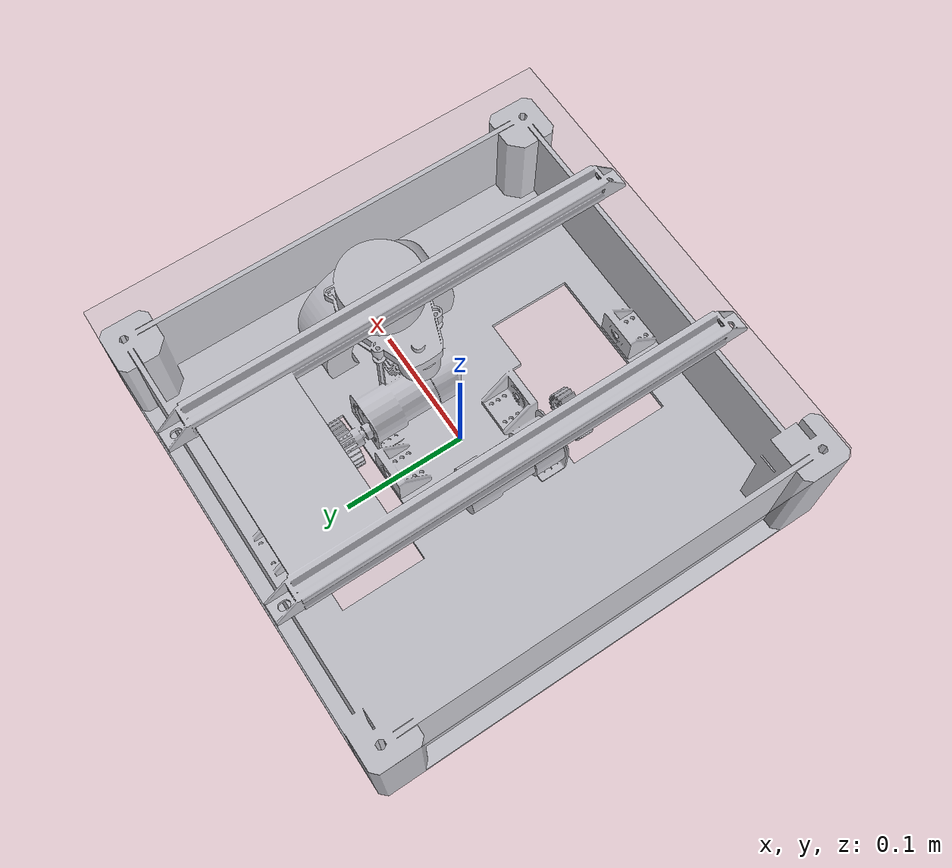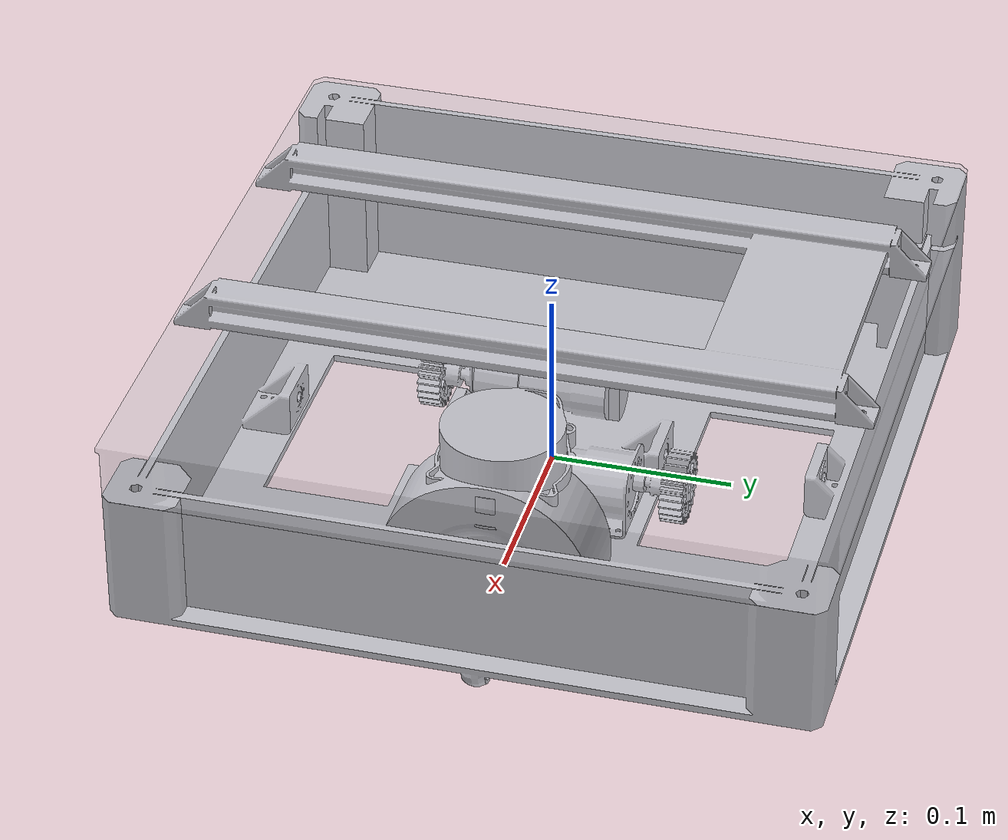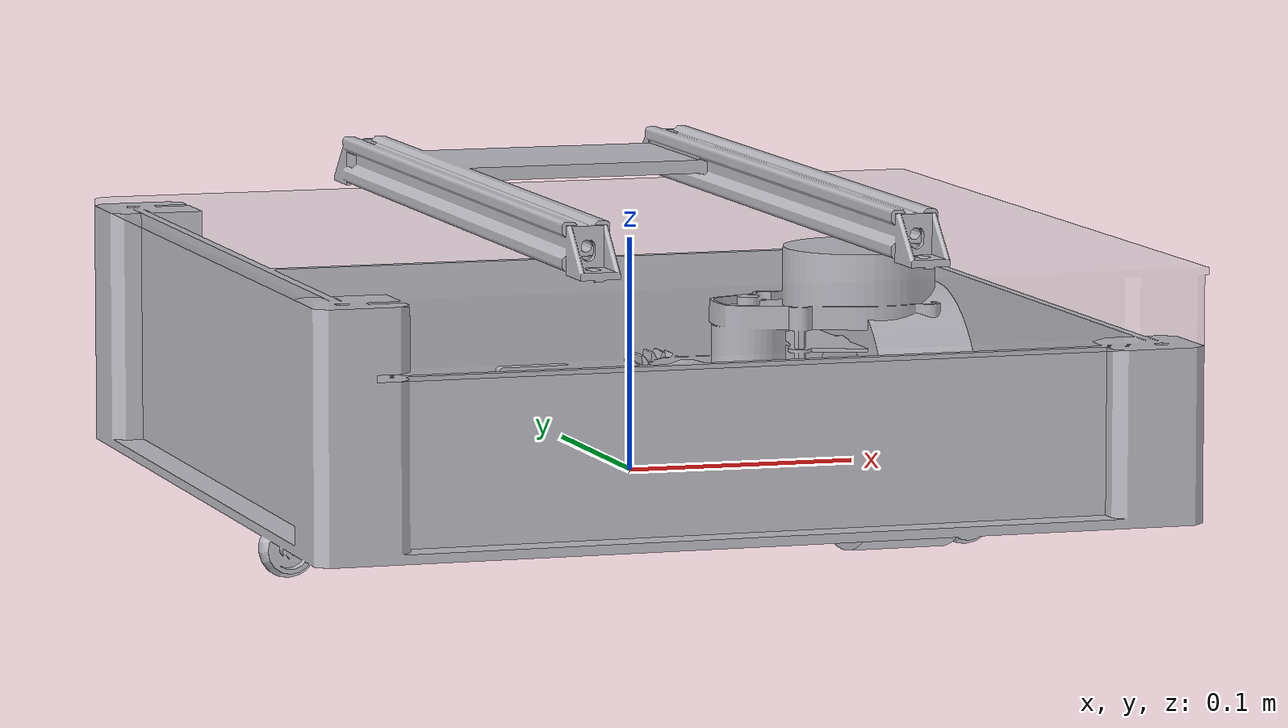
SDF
<?xml version='1.0'?>
<sdf version='1.7'>
  <model name='mr_robot'>
    <link name='base_link'>
      <inertial>
        <pose>-0.000222 0.006034 0.057946 0 -0 0</pose>
        <mass>22.7415</mass>
        <inertia>
          <ixx>0.39518</ixx>
          <ixy>0.00133718</ixy>
          <ixz>0</ixz>
          <iyy>0.371621</iyy>
          <iyz>0</iyz>
          <izz>0.693024</izz>
        </inertia>
      </inertial>
      <gravity>1</gravity>
      <self_collide>1</self_collide>
      <enable_wind>0</enable_wind>
      <kinematic>0</kinematic>
      <pose>0 0 0 0 -0 0</pose>
      <visual name='base_link_fixed_joint_lump__upper_panel_1_visual_2'>
        <pose>0 0 0 0 -0 0</pose>
        <geometry>
          <mesh>
            <scale>0.001 0.001 0.001</scale>
            <uri>/home/noemoji041/ros_workspaces/urdf_catkin/src/mr_robot_description/meshes/upper_panel_1.stl</uri>
          </mesh>
        </geometry>
        <material>
          <script>
            <name>Gazebo/Silver</name>
            <uri>file://media/materials/scripts/gazebo.material</uri>
          </script>
          <shader type='pixel'>
            <normal_map>__default__</normal_map>
          </shader>
          <ambient>0.05 0.05 0.05 1</ambient>
          <diffuse>0.6 0.66 0.6 1</diffuse>
          <specular>0.2 0.2 0.2 1</specular>
          <emissive>0 0 0 1</emissive>
        </material>
        <transparency>0.7</transparency>
        <cast_shadows>1</cast_shadows>
      </visual>
      <visual name='base_link_fixed_joint_lump__V_Slot_1_visual_3'>
        <pose>0 0 0 0 -0 0</pose>
        <geometry>
          <mesh>
            <scale>0.001 0.001 0.001</scale>
            <uri>/home/noemoji041/ros_workspaces/urdf_catkin/src/mr_robot_description/meshes/V_Slot_1.stl</uri>
          </mesh>
        </geometry>
        <material>
          <script>
            <name>Gazebo/Silver</name>
            <uri>file://media/materials/scripts/gazebo.material</uri>
          </script>
          <shader type='pixel'>
            <normal_map>__default__</normal_map>
          </shader>
          <ambient>0.04 0.04 0.04 1</ambient>
          <diffuse>0.8 0.8 0.8 1</diffuse>
          <specular>0.4 0.4 0.4 1</specular>
          <emissive>0 0 0 1</emissive>
        </material>
        <transparency>0</transparency>
        <cast_shadows>1</cast_shadows>
      </visual>
      <visual name='base_link_visual'>
        <pose>0 0 0 0 -0 0</pose>
        <geometry>
          <mesh>
            <scale>0.001 0.001 0.001</scale>
            <uri>/home/noemoji041/ros_workspaces/urdf_catkin/src/mr_robot_description/meshes/base_link.stl</uri>
          </mesh>
        </geometry>
        <material>
          <script>
            <name>Gazebo/Silver</name>
            <uri>file://media/materials/scripts/gazebo.material</uri>
          </script>
          <shader type='pixel'>
            <normal_map>__default__</normal_map>
          </shader>
          <ambient>0.05 0.05 0.05 1</ambient>
          <diffuse>0.9 0.9 0.9 1</diffuse>
          <specular>0.3 0.3 0.3 1</specular>
          <emissive>0 0 0 1</emissive>
        </material>
        <transparency>0</transparency>
        <cast_shadows>1</cast_shadows>
      </visual>
      <visual name='base_link_fixed_joint_lump__lidar_1_visual_1'>
        <pose>0 0 0 0 -0 0</pose>
        <geometry>
          <mesh>
            <scale>0.001 0.001 0.001</scale>
            <uri>/home/noemoji041/ros_workspaces/urdf_catkin/src/mr_robot_description/meshes/lidar_1.stl</uri>
          </mesh>
        </geometry>
        <material>
          <script>
            <name>Gazebo/Silver</name>
            <uri>file://media/materials/scripts/gazebo.material</uri>
          </script>
          <shader type='pixel'>
            <normal_map>__default__</normal_map>
          </shader>
          <ambient>0.1 0.1 0.75 1</ambient>
          <diffuse>0.3 0.3 0.9 1</diffuse>
          <specular>0.5 0.5 0.5 1</specular>
          <emissive>0 0 0 1</emissive>
        </material>
        <transparency>0</transparency>
        <cast_shadows>1</cast_shadows>
      </visual>
      <collision name='base_link_fixed_joint_lump__upper_panel_1_collision_2'>
        <laser_retro>0</laser_retro>
        <max_contacts>10</max_contacts>
        <pose>0 0 0 0 -0 0</pose>
        <geometry>
          <mesh>
            <uri>/home/noemoji041/ros_workspaces/urdf_catkin/src/mr_robot_description/meshes/upper_panel_1.stl</uri>
            <scale>0.001 0.001 0.001</scale>
          </mesh>
        </geometry>
        <surface>
          <friction>
            <ode>
              <mu>0.2</mu>
              <mu2>0.2</mu2>
              <fdir1>0 0 0</fdir1>
              <slip1>0</slip1>
              <slip2>0</slip2>
            </ode>
            <torsional>
              <coefficient>1</coefficient>
              <patch_radius>0</patch_radius>
              <surface_radius>0</surface_radius>
              <use_patch_radius>1</use_patch_radius>
              <ode>
                <slip>0</slip>
              </ode>
            </torsional>
          </friction>
          <bounce>
            <restitution_coefficient>0</restitution_coefficient>
            <threshold>1e+06</threshold>
          </bounce>
          <contact>
            <collide_without_contact>0</collide_without_contact>
            <collide_without_contact_bitmask>1</collide_without_contact_bitmask>
            <collide_bitmask>1</collide_bitmask>
            <ode>
              <soft_cfm>0</soft_cfm>
              <soft_erp>0.2</soft_erp>
              <kp>1e+13</kp>
              <kd>1</kd>
              <max_vel>0.01</max_vel>
              <min_depth>0</min_depth>
            </ode>
            <bullet>
              <split_impulse>1</split_impulse>
              <split_impulse_penetration_threshold>-0.01</split_impulse_penetration_threshold>
              <soft_cfm>0</soft_cfm>
              <soft_erp>0.2</soft_erp>
              <kp>1e+13</kp>
              <kd>1</kd>
            </bullet>
          </contact>
        </surface>
      </collision>
      <collision name='base_link_fixed_joint_lump__lidar_1_collision_1'>
        <laser_retro>0</laser_retro>
        <max_contacts>10</max_contacts>
        <pose>0 0 0 0 -0 0</pose>
        <geometry>
          <mesh>
            <uri>/home/noemoji041/ros_workspaces/urdf_catkin/src/mr_robot_description/meshes/lidar_1.stl</uri>
            <scale>0.001 0.001 0.001</scale>
          </mesh>
        </geometry>
        <surface>
          <friction>
            <ode>
              <mu>0.2</mu>
              <mu2>0.2</mu2>
              <fdir1>0 0 0</fdir1>
              <slip1>0</slip1>
              <slip2>0</slip2>
            </ode>
            <torsional>
              <coefficient>1</coefficient>
              <patch_radius>0</patch_radius>
              <surface_radius>0</surface_radius>
              <use_patch_radius>1</use_patch_radius>
              <ode>
                <slip>0</slip>
              </ode>
            </torsional>
          </friction>
          <bounce>
            <restitution_coefficient>0</restitution_coefficient>
            <threshold>1e+06</threshold>
          </bounce>
          <contact>
            <collide_without_contact>0</collide_without_contact>
            <collide_without_contact_bitmask>1</collide_without_contact_bitmask>
            <collide_bitmask>1</collide_bitmask>
            <ode>
              <soft_cfm>0</soft_cfm>
              <soft_erp>0.2</soft_erp>
              <kp>1e+13</kp>
              <kd>1</kd>
              <max_vel>0.01</max_vel>
              <min_depth>0</min_depth>
            </ode>
            <bullet>
              <split_impulse>1</split_impulse>
              <split_impulse_penetration_threshold>-0.01</split_impulse_penetration_threshold>
              <soft_cfm>0</soft_cfm>
              <soft_erp>0.2</soft_erp>
              <kp>1e+13</kp>
              <kd>1</kd>
            </bullet>
          </contact>
        </surface>
      </collision>
      <collision name='base_link_collision'>
        <laser_retro>0</laser_retro>
        <max_contacts>10</max_contacts>
        <pose>0 0 0 0 -0 0</pose>
        <geometry>
          <mesh>
            <uri>/home/noemoji041/ros_workspaces/urdf_catkin/src/mr_robot_description/meshes/base_link.stl</uri>
            <scale>0.001 0.001 0.001</scale>
          </mesh>
        </geometry>
        <surface>
          <friction>
            <ode>
              <mu>0.2</mu>
              <mu2>0.2</mu2>
              <fdir1>0 0 0</fdir1>
              <slip1>0</slip1>
              <slip2>0</slip2>
            </ode>
            <torsional>
              <coefficient>1</coefficient>
              <patch_radius>0</patch_radius>
              <surface_radius>0</surface_radius>
              <use_patch_radius>1</use_patch_radius>
              <ode>
                <slip>0</slip>
              </ode>
            </torsional>
          </friction>
          <bounce>
            <restitution_coefficient>0</restitution_coefficient>
            <threshold>1e+06</threshold>
          </bounce>
          <contact>
            <collide_without_contact>0</collide_without_contact>
            <collide_without_contact_bitmask>1</collide_without_contact_bitmask>
            <collide_bitmask>1</collide_bitmask>
            <ode>
              <soft_cfm>0</soft_cfm>
              <soft_erp>0.2</soft_erp>
              <kp>1e+13</kp>
              <kd>1</kd>
              <max_vel>0.01</max_vel>
              <min_depth>0</min_depth>
            </ode>
            <bullet>
              <split_impulse>1</split_impulse>
              <split_impulse_penetration_threshold>-0.01</split_impulse_penetration_threshold>
              <soft_cfm>0</soft_cfm>
              <soft_erp>0.2</soft_erp>
              <kp>1e+13</kp>
              <kd>1</kd>
            </bullet>
          </contact>
        </surface>
      </collision>
      <collision name='base_link_fixed_joint_lump__V_Slot_1_collision_3'>
        <laser_retro>0</laser_retro>
        <max_contacts>10</max_contacts>
        <pose>0 0 0 0 -0 0</pose>
        <geometry>
          <mesh>
            <uri>/home/noemoji041/ros_workspaces/urdf_catkin/src/mr_robot_description/meshes/V_Slot_1.stl</uri>
            <scale>0.001 0.001 0.001</scale>
          </mesh>
        </geometry>
        <surface>
          <friction>
            <ode>
              <mu>0.2</mu>
              <mu2>0.2</mu2>
              <fdir1>0 0 0</fdir1>
              <slip1>0</slip1>
              <slip2>0</slip2>
            </ode>
            <torsional>
              <coefficient>1</coefficient>
              <patch_radius>0</patch_radius>
              <surface_radius>0</surface_radius>
              <use_patch_radius>1</use_patch_radius>
              <ode>
                <slip>0</slip>
              </ode>
            </torsional>
          </friction>
          <bounce>
            <restitution_coefficient>0</restitution_coefficient>
            <threshold>1e+06</threshold>
          </bounce>
          <contact>
            <collide_without_contact>0</collide_without_contact>
            <collide_without_contact_bitmask>1</collide_without_contact_bitmask>
            <collide_bitmask>1</collide_bitmask>
            <ode>
              <soft_cfm>0</soft_cfm>
              <soft_erp>0.2</soft_erp>
              <kp>1e+13</kp>
              <kd>1</kd>
              <max_vel>0.01</max_vel>
              <min_depth>0</min_depth>
            </ode>
            <bullet>
              <split_impulse>1</split_impulse>
              <split_impulse_penetration_threshold>-0.01</split_impulse_penetration_threshold>
              <soft_cfm>0</soft_cfm>
              <soft_erp>0.2</soft_erp>
              <kp>1e+13</kp>
              <kd>1</kd>
            </bullet>
          </contact>
        </surface>
      </collision>
    </link>
    <link name='tyre_l_1'>
      <pose>-0.056979 0.001216 0.019723 0 -0 0</pose>
      <inertial>
        <pose>-0.063067 -7e-06 -0.001 0 -0 0</pose>
        <mass>2.44551</mass>
        <inertia>
          <ixx>0.00501</ixx>
          <ixy>0</ixy>
          <ixz>0</ixz>
          <iyy>0.003032</iyy>
          <iyz>0</iyz>
          <izz>0.003032</izz>
        </inertia>
      </inertial>
      <self_collide>1</self_collide>
      <enable_wind>0</enable_wind>
      <kinematic>0</kinematic>
      <gravity>1</gravity>
      <visual name='tyre_l_1_visual'>
        <pose>0.056979 -0.001216 -0.019723 0 -0 0</pose>
        <geometry>
          <mesh>
            <scale>0.001 0.001 0.001</scale>
            <uri>/home/noemoji041/ros_workspaces/urdf_catkin/src/mr_robot_description/meshes/tyre_l_1.stl</uri>
          </mesh>
        </geometry>
        <material>
          <script>
            <name>Gazebo/Silver</name>
            <uri>file://media/materials/scripts/gazebo.material</uri>
          </script>
          <shader type='pixel'>
            <normal_map>__default__</normal_map>
          </shader>
          <ambient>0.05 0.05 0.05 0</ambient>
          <diffuse>0.2 0.2 0.2 1</diffuse>
          <specular>0.5 0.5 0.5 1</specular>
          <emissive>0 0 0 1</emissive>
        </material>
        <transparency>0</transparency>
        <cast_shadows>1</cast_shadows>
      </visual>
      <collision name='tyre_l_1_collision'>
        <laser_retro>0</laser_retro>
        <max_contacts>10</max_contacts>
        <pose>0.056979 -0.001216 -0.019723 0 -0 0</pose>
        <geometry>
          <mesh>
            <uri>/home/noemoji041/ros_workspaces/urdf_catkin/src/mr_robot_description/meshes/tyre_l_1.stl</uri>
            <scale>0.001 0.001 0.001</scale>
          </mesh>
        </geometry>
        <surface>
          <friction>
            <ode>
              <mu>0.2</mu>
              <mu2>0.2</mu2>
              <fdir1>0 0 0</fdir1>
              <slip1>0</slip1>
              <slip2>0</slip2>
            </ode>
            <torsional>
              <coefficient>1</coefficient>
              <patch_radius>0</patch_radius>
              <surface_radius>0</surface_radius>
              <use_patch_radius>1</use_patch_radius>
              <ode>
                <slip>0</slip>
              </ode>
            </torsional>
          </friction>
          <bounce>
            <restitution_coefficient>0</restitution_coefficient>
            <threshold>1e+06</threshold>
          </bounce>
          <contact>
            <collide_without_contact>0</collide_without_contact>
            <collide_without_contact_bitmask>1</collide_without_contact_bitmask>
            <collide_bitmask>1</collide_bitmask>
            <ode>
              <soft_cfm>0</soft_cfm>
              <soft_erp>0.2</soft_erp>
              <kp>1e+13</kp>
              <kd>1</kd>
              <max_vel>0.01</max_vel>
              <min_depth>0</min_depth>
            </ode>
            <bullet>
              <split_impulse>1</split_impulse>
              <split_impulse_penetration_threshold>-0.01</split_impulse_penetration_threshold>
              <soft_cfm>0</soft_cfm>
              <soft_erp>0.2</soft_erp>
              <kp>1e+13</kp>
              <kd>1</kd>
            </bullet>
          </contact>
        </surface>
      </collision>
    </link>
    <link name='tyre_r_1'>
      <pose>0.050906 -0.000201 0.019723 0 -0 0</pose>
      <inertial>
        <pose>0.065254 -7e-06 -0.001 0 -0 0</pose>
        <mass>2.44551</mass>
        <inertia>
          <ixx>0.00501</ixx>
          <ixy>0</ixy>
          <ixz>0</ixz>
          <iyy>0.003032</iyy>
          <iyz>0</iyz>
          <izz>0.003032</izz>
        </inertia>
      </inertial>
      <self_collide>1</self_collide>
      <enable_wind>0</enable_wind>
      <kinematic>0</kinematic>
      <gravity>1</gravity>
      <visual name='tyre_r_1_visual'>
        <pose>-0.050906 0.000201 -0.019723 0 -0 0</pose>
        <geometry>
          <mesh>
            <scale>0.001 0.001 0.001</scale>
            <uri>/home/noemoji041/ros_workspaces/urdf_catkin/src/mr_robot_description/meshes/tyre_r_1.stl</uri>
          </mesh>
        </geometry>
        <material>
          <script>
            <name>Gazebo/Silver</name>
            <uri>file://media/materials/scripts/gazebo.material</uri>
          </script>
          <shader type='pixel'>
            <normal_map>__default__</normal_map>
          </shader>
          <ambient>0.05 0.05 0.05 0</ambient>
          <diffuse>0.2 0.2 0.2 1</diffuse>
          <specular>0.5 0.5 0.5 1</specular>
          <emissive>0 0 0 1</emissive>
        </material>
        <transparency>0</transparency>
        <cast_shadows>1</cast_shadows>
      </visual>
      <collision name='tyre_r_1_collision'>
        <laser_retro>0</laser_retro>
        <max_contacts>10</max_contacts>
        <pose>-0.050906 0.000201 -0.019723 0 -0 0</pose>
        <geometry>
          <mesh>
            <uri>/home/noemoji041/ros_workspaces/urdf_catkin/src/mr_robot_description/meshes/tyre_r_1.stl</uri>
            <scale>0.001 0.001 0.001</scale>
          </mesh>
        </geometry>
        <surface>
          <friction>
            <ode>
              <mu>0.2</mu>
              <mu2>0.2</mu2>
              <fdir1>0 0 0</fdir1>
              <slip1>0</slip1>
              <slip2>0</slip2>
            </ode>
            <torsional>
              <coefficient>1</coefficient>
              <patch_radius>0</patch_radius>
              <surface_radius>0</surface_radius>
              <use_patch_radius>1</use_patch_radius>
              <ode>
                <slip>0</slip>
              </ode>
            </torsional>
          </friction>
          <bounce>
            <restitution_coefficient>0</restitution_coefficient>
            <threshold>1e+06</threshold>
          </bounce>
          <contact>
            <collide_without_contact>0</collide_without_contact>
            <collide_without_contact_bitmask>1</collide_without_contact_bitmask>
            <collide_bitmask>1</collide_bitmask>
            <ode>
              <soft_cfm>0</soft_cfm>
              <soft_erp>0.2</soft_erp>
              <kp>1e+13</kp>
              <kd>1</kd>
              <max_vel>0.01</max_vel>
              <min_depth>0</min_depth>
            </ode>
            <bullet>
              <split_impulse>1</split_impulse>
              <split_impulse_penetration_threshold>-0.01</split_impulse_penetration_threshold>
              <soft_cfm>0</soft_cfm>
              <soft_erp>0.2</soft_erp>
              <kp>1e+13</kp>
              <kd>1</kd>
            </bullet>
          </contact>
        </surface>
      </collision>
    </link>
    <joint name='Revolute 10' type='revolute'>
      <parent>base_link</parent>
      <child>tyre_l_1</child>
      <pose>0 0 0 0 -0 0</pose>
      <axis>
        <xyz>-1 0 0</xyz>
        <limit>
          <lower>-1e+16</lower>
          <upper>1e+16</upper>
          <effort>-1</effort>
          <velocity>-1</velocity>
        </limit>
        <dynamics>
          <spring_reference>0</spring_reference>
          <spring_stiffness>0</spring_stiffness>
          <damping>0</damping>
          <friction>0</friction>
        </dynamics>
      </axis>
      <physics>
        <ode>
          <limit>
            <cfm>0</cfm>
            <erp>0.2</erp>
          </limit>
          <suspension>
            <cfm>0</cfm>
            <erp>0.2</erp>
          </suspension>
        </ode>
      </physics>
    </joint>
    <joint name='Revolute 9' type='revolute'>
      <parent>base_link</parent>
      <child>tyre_r_1</child>
      <pose>0 0 0 0 -0 0</pose>
      <axis>
        <xyz>1 0 0</xyz>
        <limit>
          <lower>-1e+16</lower>
          <upper>1e+16</upper>
          <effort>-1</effort>
          <velocity>-1</velocity>
        </limit>
        <dynamics>
          <spring_reference>0</spring_reference>
          <spring_stiffness>0</spring_stiffness>
          <damping>0</damping>
          <friction>0</friction>
        </dynamics>
      </axis>
      <physics>
        <ode>
          <limit>
            <cfm>0</cfm>
            <erp>0.2</erp>
          </limit>
          <suspension>
            <cfm>0</cfm>
            <erp>0.2</erp>
          </suspension>
        </ode>
      </physics>
    </joint>
    <static>0</static>
    <allow_auto_disable>1</allow_auto_disable>
    <plugin name='control' filename='libgazebo_ros_control.so'>
      <robotNamespace>/</robotNamespace>
    </plugin>
  </model>
</sdf>
